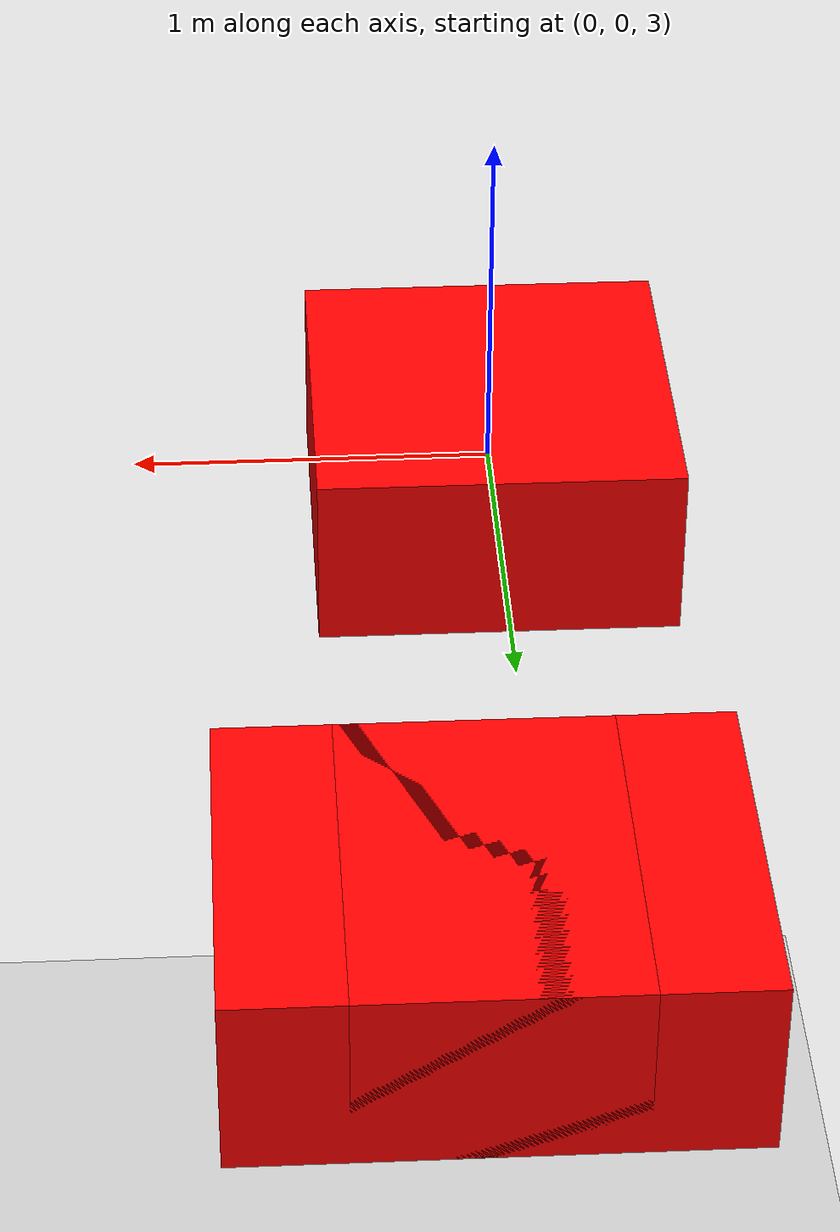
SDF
<?xml version="1.0"?>
<sdf version="1.6">
  <world name="default">

    <model name="ground_plane">
      <static>true</static>
      <link name="link">
        <collision name="collision">
          <geometry>
            <plane>
              <normal>0 0 1</normal>
            </plane>
          </geometry>
        </collision>
        <visual name="visual">
          <geometry>
            <plane>
              <normal>0 0 1</normal>
              <size>100 100</size>
            </plane>
          </geometry>
          <material>
            <ambient>0.8 0.8 0.8 1</ambient>
            <diffuse>0.8 0.8 0.8 1</diffuse>
            <specular>0.8 0.8 0.8 1</specular>
          </material>
        </visual>
      </link>
    </model>

    <model name="M1">
      <pose>0 2 3.0 0 0.0 0.0</pose>
      <link name="body">
        <inertial>
          <inertia>
            <ixx>1</ixx>
            <ixy>0</ixy>
            <ixz>0</ixz>
            <iyy>1</iyy>
            <iyz>0</iyz>
            <izz>1</izz>
          </inertia>
          <mass>1.0</mass>
        </inertial>
        <collision name="box_collision">
          <geometry>
            <box>
              <size>1 1 0.5</size>
            </box>
          </geometry>
        </collision>

        <visual name="box_visual">
          <geometry>
            <box>
              <size>1 1 0.5</size>
            </box>
          </geometry>
          <material>
            <ambient>1 0 0 1</ambient>
            <diffuse>1 0 0 1</diffuse>
            <specular>1 0 0 1</specular>
          </material>
        </visual>
      </link>
      <joint name="world_joint" type="fixed">
        <parent>world</parent>
        <child>body</child>
      </joint>
    </model>
    <model name="M2">
      <pose>0 0 3.0 0 0.0 0.0</pose>
      <link name="body">
        <inertial>
          <inertia>
            <ixx>1</ixx>
            <ixy>0</ixy>
            <ixz>0</ixz>
            <iyy>1</iyy>
            <iyz>0</iyz>
            <izz>1</izz>
          </inertia>
          <mass>1.0</mass>
        </inertial>
        <collision name="box_collision">
          <geometry>
            <box>
              <size>1 1 0.5</size>
            </box>
          </geometry>
        </collision>

        <visual name="box_visual">
          <geometry>
            <box>
              <size>1 1 0.5</size>
            </box>
          </geometry>
          <material>
            <ambient>1 0 0 1</ambient>
            <diffuse>1 0 0 1</diffuse>
            <specular>1 0 0 1</specular>
          </material>
        </visual>
      </link>
    </model>
    <model name="M3">
      <pose>0.3 2 3.0 0 0.0 0</pose>
      <link name="body">
        <inertial>
          <inertia>
            <ixx>1</ixx>
            <ixy>0</ixy>
            <ixz>0</ixz>
            <iyy>1</iyy>
            <iyz>0</iyz>
            <izz>1</izz>
          </inertia>
          <mass>1.0</mass>
        </inertial>
        <collision name="box_collision">
          <geometry>
            <box>
              <size>1 1 0.5</size>
            </box>
          </geometry>
        </collision>

        <visual name="box_visual">
          <geometry>
            <box>
              <size>1 1 0.5</size>
            </box>
          </geometry>
          <material>
            <ambient>1 0 0 1</ambient>
            <diffuse>1 0 0 1</diffuse>
            <specular>1 0 0 1</specular>
          </material>
        </visual>
      </link>
    </model>
  </world>
</sdf>
